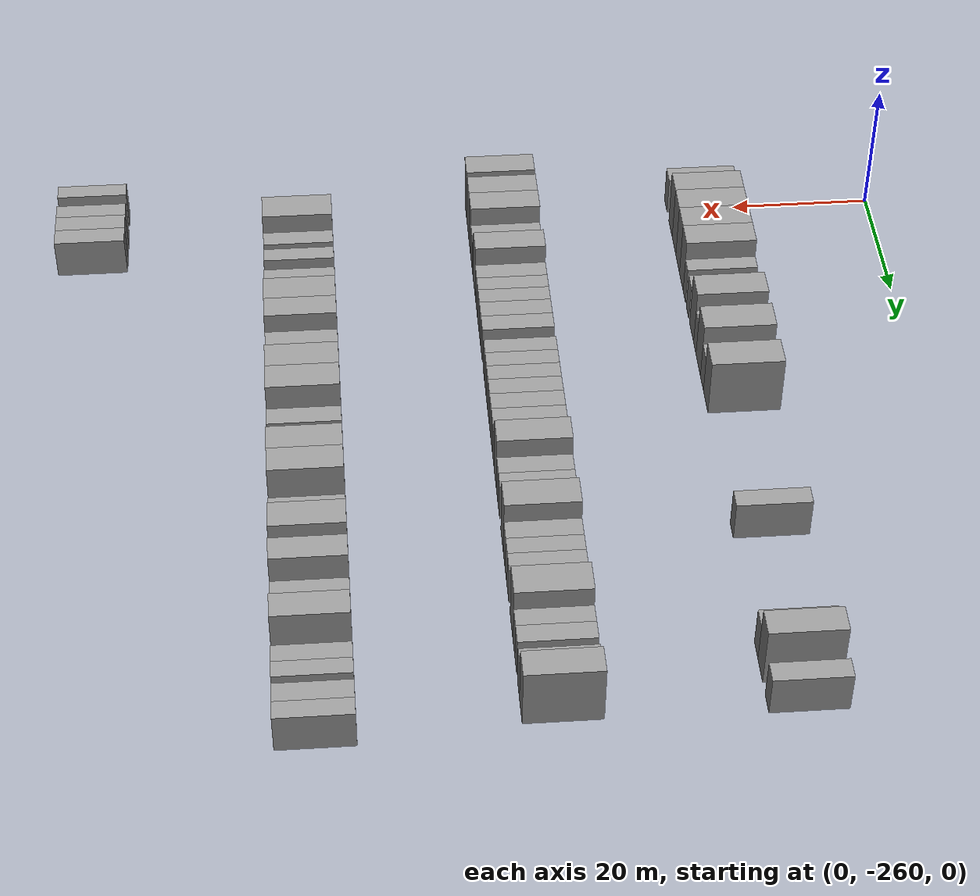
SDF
<sdf version="1.6">
 <world name="default">
  <model name="building_52">
   <static>1</static>
   <pose>25.0000 -261.0676 0 0.000000 0.000000 0.000000</pose>
   <link name="link">
    <pose>0 0 3.00 0 0 0</pose>
    <collision name="collision"><geometry><box><size>10.0000 2.9197 6.0000</size></box></geometry></collision>
    <visual name="visual">
     <cast_shadows>0</cast_shadows>
     <geometry><box><size>10.0000 2.9197 6.0000</size></box></geometry>
     <material>
      <script>
       <uri>model://grey_wall/materials/scripts</uri>
       <uri>model://grey_wall/materials/textures</uri>
       <name>vrc/grey_wall</name>
      </script>
     </material>
    </visual>
   </link>
  </model>
  <model name="building_53">
   <static>1</static>
   <pose>25.0000 -255.6854 0 0.000000 0.000000 0.000000</pose>
   <link name="link">
    <pose>0 0 4.50 0 0 0</pose>
    <collision name="collision"><geometry><box><size>10.0000 3.8448 9.0000</size></box></geometry></collision>
    <visual name="visual">
     <cast_shadows>0</cast_shadows>
     <geometry><box><size>10.0000 3.8448 9.0000</size></box></geometry>
     <material>
      <script>
       <uri>model://grey_wall/materials/scripts</uri>
       <uri>model://grey_wall/materials/textures</uri>
       <name>vrc/grey_wall</name>
      </script>
     </material>
    </visual>
   </link>
  </model>
  <model name="building_54">
   <static>1</static>
   <pose>25.0000 -251.7251 0 0.000000 0.000000 0.000000</pose>
   <link name="link">
    <pose>0 0 4.50 0 0 0</pose>
    <collision name="collision"><geometry><box><size>10.0000 4.0758 9.0000</size></box></geometry></collision>
    <visual name="visual">
     <cast_shadows>0</cast_shadows>
     <geometry><box><size>10.0000 4.0758 9.0000</size></box></geometry>
     <material>
      <script>
       <uri>model://grey_wall/materials/scripts</uri>
       <uri>model://grey_wall/materials/textures</uri>
       <name>vrc/grey_wall</name>
      </script>
     </material>
    </visual>
   </link>
  </model>
  <model name="building_55">
   <static>1</static>
   <pose>25.0000 -247.6626 0 0.000000 0.000000 0.000000</pose>
   <link name="link">
    <pose>0 0 4.50 0 0 0</pose>
    <collision name="collision"><geometry><box><size>10.0000 4.0492 9.0000</size></box></geometry></collision>
    <visual name="visual">
     <cast_shadows>0</cast_shadows>
     <geometry><box><size>10.0000 4.0492 9.0000</size></box></geometry>
     <material>
      <script>
       <uri>model://grey_wall/materials/scripts</uri>
       <uri>model://grey_wall/materials/textures</uri>
       <name>vrc/grey_wall</name>
      </script>
     </material>
    </visual>
   </link>
  </model>
  <model name="building_56">
   <static>1</static>
   <pose>25.0000 -243.6527 0 0.000000 0.000000 0.000000</pose>
   <link name="link">
    <pose>0 0 4.50 0 0 0</pose>
    <collision name="collision"><geometry><box><size>10.0000 3.9707 9.0000</size></box></geometry></collision>
    <visual name="visual">
     <cast_shadows>0</cast_shadows>
     <geometry><box><size>10.0000 3.9707 9.0000</size></box></geometry>
     <material>
      <script>
       <uri>model://grey_wall/materials/scripts</uri>
       <uri>model://grey_wall/materials/textures</uri>
       <name>vrc/grey_wall</name>
      </script>
     </material>
    </visual>
   </link>
  </model>
  <model name="building_57">
   <static>1</static>
   <pose>25.0000 -240.4575 0 0.000000 0.000000 0.000000</pose>
   <link name="link">
    <pose>0 0 3.00 0 0 0</pose>
    <collision name="collision"><geometry><box><size>10.0000 2.4198 6.0000</size></box></geometry></collision>
    <visual name="visual">
     <cast_shadows>0</cast_shadows>
     <geometry><box><size>10.0000 2.4198 6.0000</size></box></geometry>
     <material>
      <script>
       <uri>model://grey_wall/materials/scripts</uri>
       <uri>model://grey_wall/materials/textures</uri>
       <name>vrc/grey_wall</name>
      </script>
     </material>
    </visual>
   </link>
  </model>
  <model name="building_58">
   <static>1</static>
   <pose>25.0000 -237.0049 0 0.000000 0.000000 0.000000</pose>
   <link name="link">
    <pose>0 0 3.00 0 0 0</pose>
    <collision name="collision"><geometry><box><size>10.0000 2.4852 6.0000</size></box></geometry></collision>
    <visual name="visual">
     <cast_shadows>0</cast_shadows>
     <geometry><box><size>10.0000 2.4852 6.0000</size></box></geometry>
     <material>
      <script>
       <uri>model://grey_wall/materials/scripts</uri>
       <uri>model://grey_wall/materials/textures</uri>
       <name>vrc/grey_wall</name>
      </script>
     </material>
    </visual>
   </link>
  </model>
  <model name="building_59">
   <static>1</static>
   <pose>25.0000 -232.6993 0 0.000000 0.000000 0.000000</pose>
   <link name="link">
    <pose>0 0 4.50 0 0 0</pose>
    <collision name="collision"><geometry><box><size>10.0000 4.1260 9.0000</size></box></geometry></collision>
    <visual name="visual">
     <cast_shadows>0</cast_shadows>
     <geometry><box><size>10.0000 4.1260 9.0000</size></box></geometry>
     <material>
      <script>
       <uri>model://grey_wall/materials/scripts</uri>
       <uri>model://grey_wall/materials/textures</uri>
       <name>vrc/grey_wall</name>
      </script>
     </material>
    </visual>
   </link>
  </model>
  <model name="building_60">
   <static>1</static>
   <pose>25.0000 -229.4188 0 0.000000 0.000000 0.000000</pose>
   <link name="link">
    <pose>0 0 3.00 0 0 0</pose>
    <collision name="collision"><geometry><box><size>10.0000 2.4350 6.0000</size></box></geometry></collision>
    <visual name="visual">
     <cast_shadows>0</cast_shadows>
     <geometry><box><size>10.0000 2.4350 6.0000</size></box></geometry>
     <material>
      <script>
       <uri>model://grey_wall/materials/scripts</uri>
       <uri>model://grey_wall/materials/textures</uri>
       <name>vrc/grey_wall</name>
      </script>
     </material>
    </visual>
   </link>
  </model>
  <model name="building_61">
   <static>1</static>
   <pose>25.0000 -225.9693 0 0.000000 0.000000 0.000000</pose>
   <link name="link">
    <pose>0 0 4.50 0 0 0</pose>
    <collision name="collision"><geometry><box><size>10.0000 4.4639 9.0000</size></box></geometry></collision>
    <visual name="visual">
     <cast_shadows>0</cast_shadows>
     <geometry><box><size>10.0000 4.4639 9.0000</size></box></geometry>
     <material>
      <script>
       <uri>model://grey_wall/materials/scripts</uri>
       <uri>model://grey_wall/materials/textures</uri>
       <name>vrc/grey_wall</name>
      </script>
     </material>
    </visual>
   </link>
  </model>
  <model name="building_62">
   <static>1</static>
   <pose>25.0000 -222.2496 0 0.000000 0.000000 0.000000</pose>
   <link name="link">
    <pose>0 0 3.00 0 0 0</pose>
    <collision name="collision"><geometry><box><size>10.0000 2.9757 6.0000</size></box></geometry></collision>
    <visual name="visual">
     <cast_shadows>0</cast_shadows>
     <geometry><box><size>10.0000 2.9757 6.0000</size></box></geometry>
     <material>
      <script>
       <uri>model://grey_wall/materials/scripts</uri>
       <uri>model://grey_wall/materials/textures</uri>
       <name>vrc/grey_wall</name>
      </script>
     </material>
    </visual>
   </link>
  </model>
  <model name="building_63">
   <static>1</static>
   <pose>25.0000 -218.5506 0 0.000000 0.000000 0.000000</pose>
   <link name="link">
    <pose>0 0 4.50 0 0 0</pose>
    <collision name="collision"><geometry><box><size>10.0000 4.4222 9.0000</size></box></geometry></collision>
    <visual name="visual">
     <cast_shadows>0</cast_shadows>
     <geometry><box><size>10.0000 4.4222 9.0000</size></box></geometry>
     <material>
      <script>
       <uri>model://grey_wall/materials/scripts</uri>
       <uri>model://grey_wall/materials/textures</uri>
       <name>vrc/grey_wall</name>
      </script>
     </material>
    </visual>
   </link>
  </model>
  <model name="building_64">
   <static>1</static>
   <pose>25.0000 -194.2822 0 0.000000 0.000000 0.000000</pose>
   <link name="link">
    <pose>0 0 3.00 0 0 0</pose>
    <collision name="collision"><geometry><box><size>10.0000 2.7049 6.0000</size></box></geometry></collision>
    <visual name="visual">
     <cast_shadows>0</cast_shadows>
     <geometry><box><size>10.0000 2.7049 6.0000</size></box></geometry>
     <material>
      <script>
       <uri>model://grey_wall/materials/scripts</uri>
       <uri>model://grey_wall/materials/textures</uri>
       <name>vrc/grey_wall</name>
      </script>
     </material>
    </visual>
   </link>
  </model>
  <model name="building_65">
   <static>1</static>
   <pose>25.0000 -173.8294 0 0.000000 0.000000 0.000000</pose>
   <link name="link">
    <pose>0 0 3.00 0 0 0</pose>
    <collision name="collision"><geometry><box><size>10.0000 2.7336 6.0000</size></box></geometry></collision>
    <visual name="visual">
     <cast_shadows>0</cast_shadows>
     <geometry><box><size>10.0000 2.7336 6.0000</size></box></geometry>
     <material>
      <script>
       <uri>model://grey_wall/materials/scripts</uri>
       <uri>model://grey_wall/materials/textures</uri>
       <name>vrc/grey_wall</name>
      </script>
     </material>
    </visual>
   </link>
  </model>
  <model name="building_66">
   <static>1</static>
   <pose>25.0000 -170.5911 0 0.000000 0.000000 0.000000</pose>
   <link name="link">
    <pose>0 0 4.50 0 0 0</pose>
    <collision name="collision"><geometry><box><size>10.0000 3.7430 9.0000</size></box></geometry></collision>
    <visual name="visual">
     <cast_shadows>0</cast_shadows>
     <geometry><box><size>10.0000 3.7430 9.0000</size></box></geometry>
     <material>
      <script>
       <uri>model://grey_wall/materials/scripts</uri>
       <uri>model://grey_wall/materials/textures</uri>
       <name>vrc/grey_wall</name>
      </script>
     </material>
    </visual>
   </link>
  </model>
  <model name="building_67">
   <static>1</static>
   <pose>25.0000 -165.2950 0 0.000000 0.000000 0.000000</pose>
   <link name="link">
    <pose>0 0 3.00 0 0 0</pose>
    <collision name="collision"><geometry><box><size>10.0000 2.8493 6.0000</size></box></geometry></collision>
    <visual name="visual">
     <cast_shadows>0</cast_shadows>
     <geometry><box><size>10.0000 2.8493 6.0000</size></box></geometry>
     <material>
      <script>
       <uri>model://grey_wall/materials/scripts</uri>
       <uri>model://grey_wall/materials/textures</uri>
       <name>vrc/grey_wall</name>
      </script>
     </material>
    </visual>
   </link>
  </model>
  <model name="building_267">
   <static>1</static>
   <pose>55.0000 -261.7389 0 0.000000 0.000000 0.000000</pose>
   <link name="link">
    <pose>0 0 4.50 0 0 0</pose>
    <collision name="collision"><geometry><box><size>10.0000 3.7535 9.0000</size></box></geometry></collision>
    <visual name="visual">
     <cast_shadows>0</cast_shadows>
     <geometry><box><size>10.0000 3.7535 9.0000</size></box></geometry>
     <material>
      <script>
       <uri>model://grey_wall/materials/scripts</uri>
       <uri>model://grey_wall/materials/textures</uri>
       <name>vrc/grey_wall</name>
      </script>
     </material>
    </visual>
   </link>
  </model>
  <model name="building_268">
   <static>1</static>
   <pose>55.0000 -257.0282 0 0.000000 0.000000 0.000000</pose>
   <link name="link">
    <pose>0 0 4.50 0 0 0</pose>
    <collision name="collision"><geometry><box><size>10.0000 3.6679 9.0000</size></box></geometry></collision>
    <visual name="visual">
     <cast_shadows>0</cast_shadows>
     <geometry><box><size>10.0000 3.6679 9.0000</size></box></geometry>
     <material>
      <script>
       <uri>model://grey_wall/materials/scripts</uri>
       <uri>model://grey_wall/materials/textures</uri>
       <name>vrc/grey_wall</name>
      </script>
     </material>
    </visual>
   </link>
  </model>
  <model name="building_269">
   <static>1</static>
   <pose>55.0000 -253.3184 0 0.000000 0.000000 0.000000</pose>
   <link name="link">
    <pose>0 0 4.50 0 0 0</pose>
    <collision name="collision"><geometry><box><size>10.0000 3.7517 9.0000</size></box></geometry></collision>
    <visual name="visual">
     <cast_shadows>0</cast_shadows>
     <geometry><box><size>10.0000 3.7517 9.0000</size></box></geometry>
     <material>
      <script>
       <uri>model://grey_wall/materials/scripts</uri>
       <uri>model://grey_wall/materials/textures</uri>
       <name>vrc/grey_wall</name>
      </script>
     </material>
    </visual>
   </link>
  </model>
  <model name="building_270">
   <static>1</static>
   <pose>55.0000 -250.1114 0 0.000000 0.000000 0.000000</pose>
   <link name="link">
    <pose>0 0 3.00 0 0 0</pose>
    <collision name="collision"><geometry><box><size>10.0000 2.6622 6.0000</size></box></geometry></collision>
    <visual name="visual">
     <cast_shadows>0</cast_shadows>
     <geometry><box><size>10.0000 2.6622 6.0000</size></box></geometry>
     <material>
      <script>
       <uri>model://grey_wall/materials/scripts</uri>
       <uri>model://grey_wall/materials/textures</uri>
       <name>vrc/grey_wall</name>
      </script>
     </material>
    </visual>
   </link>
  </model>
  <model name="building_271">
   <static>1</static>
   <pose>55.0000 -247.4795 0 0.000000 0.000000 0.000000</pose>
   <link name="link">
    <pose>0 0 3.00 0 0 0</pose>
    <collision name="collision"><geometry><box><size>10.0000 2.6016 6.0000</size></box></geometry></collision>
    <visual name="visual">
     <cast_shadows>0</cast_shadows>
     <geometry><box><size>10.0000 2.6016 6.0000</size></box></geometry>
     <material>
      <script>
       <uri>model://grey_wall/materials/scripts</uri>
       <uri>model://grey_wall/materials/textures</uri>
       <name>vrc/grey_wall</name>
      </script>
     </material>
    </visual>
   </link>
  </model>
  <model name="building_272">
   <static>1</static>
   <pose>55.0000 -244.3650 0 0.000000 0.000000 0.000000</pose>
   <link name="link">
    <pose>0 0 4.50 0 0 0</pose>
    <collision name="collision"><geometry><box><size>10.0000 3.6274 9.0000</size></box></geometry></collision>
    <visual name="visual">
     <cast_shadows>0</cast_shadows>
     <geometry><box><size>10.0000 3.6274 9.0000</size></box></geometry>
     <material>
      <script>
       <uri>model://grey_wall/materials/scripts</uri>
       <uri>model://grey_wall/materials/textures</uri>
       <name>vrc/grey_wall</name>
      </script>
     </material>
    </visual>
   </link>
  </model>
  <model name="building_273">
   <static>1</static>
   <pose>55.0000 -241.1746 0 0.000000 0.000000 0.000000</pose>
   <link name="link">
    <pose>0 0 3.00 0 0 0</pose>
    <collision name="collision"><geometry><box><size>10.0000 2.7535 6.0000</size></box></geometry></collision>
    <visual name="visual">
     <cast_shadows>0</cast_shadows>
     <geometry><box><size>10.0000 2.7535 6.0000</size></box></geometry>
     <material>
      <script>
       <uri>model://grey_wall/materials/scripts</uri>
       <uri>model://grey_wall/materials/textures</uri>
       <name>vrc/grey_wall</name>
      </script>
     </material>
    </visual>
   </link>
  </model>
  <model name="building_274">
   <static>1</static>
   <pose>55.0000 -238.5327 0 0.000000 0.000000 0.000000</pose>
   <link name="link">
    <pose>0 0 3.00 0 0 0</pose>
    <collision name="collision"><geometry><box><size>10.0000 2.5304 6.0000</size></box></geometry></collision>
    <visual name="visual">
     <cast_shadows>0</cast_shadows>
     <geometry><box><size>10.0000 2.5304 6.0000</size></box></geometry>
     <material>
      <script>
       <uri>model://grey_wall/materials/scripts</uri>
       <uri>model://grey_wall/materials/textures</uri>
       <name>vrc/grey_wall</name>
      </script>
     </material>
    </visual>
   </link>
  </model>
  <model name="building_275">
   <static>1</static>
   <pose>55.0000 -235.9418 0 0.000000 0.000000 0.000000</pose>
   <link name="link">
    <pose>0 0 3.00 0 0 0</pose>
    <collision name="collision"><geometry><box><size>10.0000 2.6516 6.0000</size></box></geometry></collision>
    <visual name="visual">
     <cast_shadows>0</cast_shadows>
     <geometry><box><size>10.0000 2.6516 6.0000</size></box></geometry>
     <material>
      <script>
       <uri>model://grey_wall/materials/scripts</uri>
       <uri>model://grey_wall/materials/textures</uri>
       <name>vrc/grey_wall</name>
      </script>
     </material>
    </visual>
   </link>
  </model>
  <model name="building_276">
   <static>1</static>
   <pose>55.0000 -233.1583 0 0.000000 0.000000 0.000000</pose>
   <link name="link">
    <pose>0 0 3.00 0 0 0</pose>
    <collision name="collision"><geometry><box><size>10.0000 2.9152 6.0000</size></box></geometry></collision>
    <visual name="visual">
     <cast_shadows>0</cast_shadows>
     <geometry><box><size>10.0000 2.9152 6.0000</size></box></geometry>
     <material>
      <script>
       <uri>model://grey_wall/materials/scripts</uri>
       <uri>model://grey_wall/materials/textures</uri>
       <name>vrc/grey_wall</name>
      </script>
     </material>
    </visual>
   </link>
  </model>
  <model name="building_277">
   <static>1</static>
   <pose>55.0000 -230.2488 0 0.000000 0.000000 0.000000</pose>
   <link name="link">
    <pose>0 0 3.00 0 0 0</pose>
    <collision name="collision"><geometry><box><size>10.0000 2.9038 6.0000</size></box></geometry></collision>
    <visual name="visual">
     <cast_shadows>0</cast_shadows>
     <geometry><box><size>10.0000 2.9038 6.0000</size></box></geometry>
     <material>
      <script>
       <uri>model://grey_wall/materials/scripts</uri>
       <uri>model://grey_wall/materials/textures</uri>
       <name>vrc/grey_wall</name>
      </script>
     </material>
    </visual>
   </link>
  </model>
  <model name="building_278">
   <static>1</static>
   <pose>55.0000 -225.4875 0 0.000000 0.000000 0.000000</pose>
   <link name="link">
    <pose>0 0 3.00 0 0 0</pose>
    <collision name="collision"><geometry><box><size>10.0000 2.6188 6.0000</size></box></geometry></collision>
    <visual name="visual">
     <cast_shadows>0</cast_shadows>
     <geometry><box><size>10.0000 2.6188 6.0000</size></box></geometry>
     <material>
      <script>
       <uri>model://grey_wall/materials/scripts</uri>
       <uri>model://grey_wall/materials/textures</uri>
       <name>vrc/grey_wall</name>
      </script>
     </material>
    </visual>
   </link>
  </model>
  <model name="building_279">
   <static>1</static>
   <pose>55.0000 -222.8541 0 0.000000 0.000000 0.000000</pose>
   <link name="link">
    <pose>0 0 3.00 0 0 0</pose>
    <collision name="collision"><geometry><box><size>10.0000 2.6481 6.0000</size></box></geometry></collision>
    <visual name="visual">
     <cast_shadows>0</cast_shadows>
     <geometry><box><size>10.0000 2.6481 6.0000</size></box></geometry>
     <material>
      <script>
       <uri>model://grey_wall/materials/scripts</uri>
       <uri>model://grey_wall/materials/textures</uri>
       <name>vrc/grey_wall</name>
      </script>
     </material>
    </visual>
   </link>
  </model>
  <model name="building_280">
   <static>1</static>
   <pose>55.0000 -220.1890 0 0.000000 0.000000 0.000000</pose>
   <link name="link">
    <pose>0 0 3.00 0 0 0</pose>
    <collision name="collision"><geometry><box><size>10.0000 2.6820 6.0000</size></box></geometry></collision>
    <visual name="visual">
     <cast_shadows>0</cast_shadows>
     <geometry><box><size>10.0000 2.6820 6.0000</size></box></geometry>
     <material>
      <script>
       <uri>model://grey_wall/materials/scripts</uri>
       <uri>model://grey_wall/materials/textures</uri>
       <name>vrc/grey_wall</name>
      </script>
     </material>
    </visual>
   </link>
  </model>
  <model name="building_281">
   <static>1</static>
   <pose>55.0000 -217.4396 0 0.000000 0.000000 0.000000</pose>
   <link name="link">
    <pose>0 0 3.00 0 0 0</pose>
    <collision name="collision"><geometry><box><size>10.0000 2.8168 6.0000</size></box></geometry></collision>
    <visual name="visual">
     <cast_shadows>0</cast_shadows>
     <geometry><box><size>10.0000 2.8168 6.0000</size></box></geometry>
     <material>
      <script>
       <uri>model://grey_wall/materials/scripts</uri>
       <uri>model://grey_wall/materials/textures</uri>
       <name>vrc/grey_wall</name>
      </script>
     </material>
    </visual>
   </link>
  </model>
  <model name="building_282">
   <static>1</static>
   <pose>55.0000 -214.5979 0 0.000000 0.000000 0.000000</pose>
   <link name="link">
    <pose>0 0 3.00 0 0 0</pose>
    <collision name="collision"><geometry><box><size>10.0000 2.8666 6.0000</size></box></geometry></collision>
    <visual name="visual">
     <cast_shadows>0</cast_shadows>
     <geometry><box><size>10.0000 2.8666 6.0000</size></box></geometry>
     <material>
      <script>
       <uri>model://grey_wall/materials/scripts</uri>
       <uri>model://grey_wall/materials/textures</uri>
       <name>vrc/grey_wall</name>
      </script>
     </material>
    </visual>
   </link>
  </model>
  <model name="building_283">
   <static>1</static>
   <pose>55.0000 -211.6831 0 0.000000 0.000000 0.000000</pose>
   <link name="link">
    <pose>0 0 3.00 0 0 0</pose>
    <collision name="collision"><geometry><box><size>10.0000 2.9630 6.0000</size></box></geometry></collision>
    <visual name="visual">
     <cast_shadows>0</cast_shadows>
     <geometry><box><size>10.0000 2.9630 6.0000</size></box></geometry>
     <material>
      <script>
       <uri>model://grey_wall/materials/scripts</uri>
       <uri>model://grey_wall/materials/textures</uri>
       <name>vrc/grey_wall</name>
      </script>
     </material>
    </visual>
   </link>
  </model>
  <model name="building_284">
   <static>1</static>
   <pose>55.0000 -208.9983 0 0.000000 0.000000 0.000000</pose>
   <link name="link">
    <pose>0 0 3.00 0 0 0</pose>
    <collision name="collision"><geometry><box><size>10.0000 2.4067 6.0000</size></box></geometry></collision>
    <visual name="visual">
     <cast_shadows>0</cast_shadows>
     <geometry><box><size>10.0000 2.4067 6.0000</size></box></geometry>
     <material>
      <script>
       <uri>model://grey_wall/materials/scripts</uri>
       <uri>model://grey_wall/materials/textures</uri>
       <name>vrc/grey_wall</name>
      </script>
     </material>
    </visual>
   </link>
  </model>
  <model name="building_285">
   <static>1</static>
   <pose>55.0000 -205.8319 0 0.000000 0.000000 0.000000</pose>
   <link name="link">
    <pose>0 0 4.50 0 0 0</pose>
    <collision name="collision"><geometry><box><size>10.0000 3.9261 9.0000</size></box></geometry></collision>
    <visual name="visual">
     <cast_shadows>0</cast_shadows>
     <geometry><box><size>10.0000 3.9261 9.0000</size></box></geometry>
     <material>
      <script>
       <uri>model://grey_wall/materials/scripts</uri>
       <uri>model://grey_wall/materials/textures</uri>
       <name>vrc/grey_wall</name>
      </script>
     </material>
    </visual>
   </link>
  </model>
  <model name="building_286">
   <static>1</static>
   <pose>55.0000 -202.4458 0 0.000000 0.000000 0.000000</pose>
   <link name="link">
    <pose>0 0 3.00 0 0 0</pose>
    <collision name="collision"><geometry><box><size>10.0000 2.8460 6.0000</size></box></geometry></collision>
    <visual name="visual">
     <cast_shadows>0</cast_shadows>
     <geometry><box><size>10.0000 2.8460 6.0000</size></box></geometry>
     <material>
      <script>
       <uri>model://grey_wall/materials/scripts</uri>
       <uri>model://grey_wall/materials/textures</uri>
       <name>vrc/grey_wall</name>
      </script>
     </material>
    </visual>
   </link>
  </model>
  <model name="building_287">
   <static>1</static>
   <pose>55.0000 -199.7913 0 0.000000 0.000000 0.000000</pose>
   <link name="link">
    <pose>0 0 3.00 0 0 0</pose>
    <collision name="collision"><geometry><box><size>10.0000 2.4629 6.0000</size></box></geometry></collision>
    <visual name="visual">
     <cast_shadows>0</cast_shadows>
     <geometry><box><size>10.0000 2.4629 6.0000</size></box></geometry>
     <material>
      <script>
       <uri>model://grey_wall/materials/scripts</uri>
       <uri>model://grey_wall/materials/textures</uri>
       <name>vrc/grey_wall</name>
      </script>
     </material>
    </visual>
   </link>
  </model>
  <model name="building_288">
   <static>1</static>
   <pose>55.0000 -194.4192 0 0.000000 0.000000 0.000000</pose>
   <link name="link">
    <pose>0 0 4.50 0 0 0</pose>
    <collision name="collision"><geometry><box><size>10.0000 4.2814 9.0000</size></box></geometry></collision>
    <visual name="visual">
     <cast_shadows>0</cast_shadows>
     <geometry><box><size>10.0000 4.2814 9.0000</size></box></geometry>
     <material>
      <script>
       <uri>model://grey_wall/materials/scripts</uri>
       <uri>model://grey_wall/materials/textures</uri>
       <name>vrc/grey_wall</name>
      </script>
     </material>
    </visual>
   </link>
  </model>
  <model name="building_289">
   <static>1</static>
   <pose>55.0000 -190.8534 0 0.000000 0.000000 0.000000</pose>
   <link name="link">
    <pose>0 0 3.00 0 0 0</pose>
    <collision name="collision"><geometry><box><size>10.0000 2.8503 6.0000</size></box></geometry></collision>
    <visual name="visual">
     <cast_shadows>0</cast_shadows>
     <geometry><box><size>10.0000 2.8503 6.0000</size></box></geometry>
     <material>
      <script>
       <uri>model://grey_wall/materials/scripts</uri>
       <uri>model://grey_wall/materials/textures</uri>
       <name>vrc/grey_wall</name>
      </script>
     </material>
    </visual>
   </link>
  </model>
  <model name="building_290">
   <static>1</static>
   <pose>55.0000 -188.1364 0 0.000000 0.000000 0.000000</pose>
   <link name="link">
    <pose>0 0 3.00 0 0 0</pose>
    <collision name="collision"><geometry><box><size>10.0000 2.5836 6.0000</size></box></geometry></collision>
    <visual name="visual">
     <cast_shadows>0</cast_shadows>
     <geometry><box><size>10.0000 2.5836 6.0000</size></box></geometry>
     <material>
      <script>
       <uri>model://grey_wall/materials/scripts</uri>
       <uri>model://grey_wall/materials/textures</uri>
       <name>vrc/grey_wall</name>
      </script>
     </material>
    </visual>
   </link>
  </model>
  <model name="building_291">
   <static>1</static>
   <pose>55.0000 -185.3908 0 0.000000 0.000000 0.000000</pose>
   <link name="link">
    <pose>0 0 3.00 0 0 0</pose>
    <collision name="collision"><geometry><box><size>10.0000 2.9077 6.0000</size></box></geometry></collision>
    <visual name="visual">
     <cast_shadows>0</cast_shadows>
     <geometry><box><size>10.0000 2.9077 6.0000</size></box></geometry>
     <material>
      <script>
       <uri>model://grey_wall/materials/scripts</uri>
       <uri>model://grey_wall/materials/textures</uri>
       <name>vrc/grey_wall</name>
      </script>
     </material>
    </visual>
   </link>
  </model>
  <model name="building_292">
   <static>1</static>
   <pose>55.0000 -179.6924 0 0.000000 0.000000 0.000000</pose>
   <link name="link">
    <pose>0 0 4.50 0 0 0</pose>
    <collision name="collision"><geometry><box><size>10.0000 4.4892 9.0000</size></box></geometry></collision>
    <visual name="visual">
     <cast_shadows>0</cast_shadows>
     <geometry><box><size>10.0000 4.4892 9.0000</size></box></geometry>
     <material>
      <script>
       <uri>model://grey_wall/materials/scripts</uri>
       <uri>model://grey_wall/materials/textures</uri>
       <name>vrc/grey_wall</name>
      </script>
     </material>
    </visual>
   </link>
  </model>
  <model name="building_293">
   <static>1</static>
   <pose>55.0000 -176.1431 0 0.000000 0.000000 0.000000</pose>
   <link name="link">
    <pose>0 0 3.00 0 0 0</pose>
    <collision name="collision"><geometry><box><size>10.0000 2.6094 6.0000</size></box></geometry></collision>
    <visual name="visual">
     <cast_shadows>0</cast_shadows>
     <geometry><box><size>10.0000 2.6094 6.0000</size></box></geometry>
     <material>
      <script>
       <uri>model://grey_wall/materials/scripts</uri>
       <uri>model://grey_wall/materials/textures</uri>
       <name>vrc/grey_wall</name>
      </script>
     </material>
    </visual>
   </link>
  </model>
  <model name="building_294">
   <static>1</static>
   <pose>55.0000 -173.4839 0 0.000000 0.000000 0.000000</pose>
   <link name="link">
    <pose>0 0 3.00 0 0 0</pose>
    <collision name="collision"><geometry><box><size>10.0000 2.7089 6.0000</size></box></geometry></collision>
    <visual name="visual">
     <cast_shadows>0</cast_shadows>
     <geometry><box><size>10.0000 2.7089 6.0000</size></box></geometry>
     <material>
      <script>
       <uri>model://grey_wall/materials/scripts</uri>
       <uri>model://grey_wall/materials/textures</uri>
       <name>vrc/grey_wall</name>
      </script>
     </material>
    </visual>
   </link>
  </model>
  <model name="building_295">
   <static>1</static>
   <pose>55.0000 -169.6611 0 0.000000 0.000000 0.000000</pose>
   <link name="link">
    <pose>0 0 3.00 0 0 0</pose>
    <collision name="collision"><geometry><box><size>10.0000 2.9366 6.0000</size></box></geometry></collision>
    <visual name="visual">
     <cast_shadows>0</cast_shadows>
     <geometry><box><size>10.0000 2.9366 6.0000</size></box></geometry>
     <material>
      <script>
       <uri>model://grey_wall/materials/scripts</uri>
       <uri>model://grey_wall/materials/textures</uri>
       <name>vrc/grey_wall</name>
      </script>
     </material>
    </visual>
   </link>
  </model>
  <model name="building_296">
   <static>1</static>
   <pose>55.0000 -166.2671 0 0.000000 0.000000 0.000000</pose>
   <link name="link">
    <pose>0 0 4.50 0 0 0</pose>
    <collision name="collision"><geometry><box><size>10.0000 3.8515 9.0000</size></box></geometry></collision>
    <visual name="visual">
     <cast_shadows>0</cast_shadows>
     <geometry><box><size>10.0000 3.8515 9.0000</size></box></geometry>
     <material>
      <script>
       <uri>model://grey_wall/materials/scripts</uri>
       <uri>model://grey_wall/materials/textures</uri>
       <name>vrc/grey_wall</name>
      </script>
     </material>
    </visual>
   </link>
  </model>
  <model name="building_505">
   <static>1</static>
   <pose>85.0000 -258.5262 0 0.000000 0.000000 0.000000</pose>
   <link name="link">
    <pose>0 0 3.00 0 0 0</pose>
    <collision name="collision"><geometry><box><size>10.0000 2.4002 6.0000</size></box></geometry></collision>
    <visual name="visual">
     <cast_shadows>0</cast_shadows>
     <geometry><box><size>10.0000 2.4002 6.0000</size></box></geometry>
     <material>
      <script>
       <uri>model://grey_wall/materials/scripts</uri>
       <uri>model://grey_wall/materials/textures</uri>
       <name>vrc/grey_wall</name>
      </script>
     </material>
    </visual>
   </link>
  </model>
  <model name="building_506">
   <static>1</static>
   <pose>85.0000 -254.0789 0 0.000000 0.000000 0.000000</pose>
   <link name="link">
    <pose>0 0 4.50 0 0 0</pose>
    <collision name="collision"><geometry><box><size>10.0000 4.4945 9.0000</size></box></geometry></collision>
    <visual name="visual">
     <cast_shadows>0</cast_shadows>
     <geometry><box><size>10.0000 4.4945 9.0000</size></box></geometry>
     <material>
      <script>
       <uri>model://grey_wall/materials/scripts</uri>
       <uri>model://grey_wall/materials/textures</uri>
       <name>vrc/grey_wall</name>
      </script>
     </material>
    </visual>
   </link>
  </model>
  <model name="building_507">
   <static>1</static>
   <pose>85.0000 -250.4963 0 0.000000 0.000000 0.000000</pose>
   <link name="link">
    <pose>0 0 3.00 0 0 0</pose>
    <collision name="collision"><geometry><box><size>10.0000 2.6707 6.0000</size></box></geometry></collision>
    <visual name="visual">
     <cast_shadows>0</cast_shadows>
     <geometry><box><size>10.0000 2.6707 6.0000</size></box></geometry>
     <material>
      <script>
       <uri>model://grey_wall/materials/scripts</uri>
       <uri>model://grey_wall/materials/textures</uri>
       <name>vrc/grey_wall</name>
      </script>
     </material>
    </visual>
   </link>
  </model>
  <model name="building_508">
   <static>1</static>
   <pose>85.0000 -246.9183 0 0.000000 0.000000 0.000000</pose>
   <link name="link">
    <pose>0 0 3.00 0 0 0</pose>
    <collision name="collision"><geometry><box><size>10.0000 2.4853 6.0000</size></box></geometry></collision>
    <visual name="visual">
     <cast_shadows>0</cast_shadows>
     <geometry><box><size>10.0000 2.4853 6.0000</size></box></geometry>
     <material>
      <script>
       <uri>model://grey_wall/materials/scripts</uri>
       <uri>model://grey_wall/materials/textures</uri>
       <name>vrc/grey_wall</name>
      </script>
     </material>
    </visual>
   </link>
  </model>
  <model name="building_509">
   <static>1</static>
   <pose>85.0000 -242.3209 0 0.000000 0.000000 0.000000</pose>
   <link name="link">
    <pose>0 0 3.00 0 0 0</pose>
    <collision name="collision"><geometry><box><size>10.0000 2.7094 6.0000</size></box></geometry></collision>
    <visual name="visual">
     <cast_shadows>0</cast_shadows>
     <geometry><box><size>10.0000 2.7094 6.0000</size></box></geometry>
     <material>
      <script>
       <uri>model://grey_wall/materials/scripts</uri>
       <uri>model://grey_wall/materials/textures</uri>
       <name>vrc/grey_wall</name>
      </script>
     </material>
    </visual>
   </link>
  </model>
  <model name="building_510">
   <static>1</static>
   <pose>85.0000 -239.6650 0 0.000000 0.000000 0.000000</pose>
   <link name="link">
    <pose>0 0 3.00 0 0 0</pose>
    <collision name="collision"><geometry><box><size>10.0000 2.6024 6.0000</size></box></geometry></collision>
    <visual name="visual">
     <cast_shadows>0</cast_shadows>
     <geometry><box><size>10.0000 2.6024 6.0000</size></box></geometry>
     <material>
      <script>
       <uri>model://grey_wall/materials/scripts</uri>
       <uri>model://grey_wall/materials/textures</uri>
       <name>vrc/grey_wall</name>
      </script>
     </material>
    </visual>
   </link>
  </model>
  <model name="building_511">
   <static>1</static>
   <pose>85.0000 -236.2658 0 0.000000 0.000000 0.000000</pose>
   <link name="link">
    <pose>0 0 4.50 0 0 0</pose>
    <collision name="collision"><geometry><box><size>10.0000 4.1960 9.0000</size></box></geometry></collision>
    <visual name="visual">
     <cast_shadows>0</cast_shadows>
     <geometry><box><size>10.0000 4.1960 9.0000</size></box></geometry>
     <material>
      <script>
       <uri>model://grey_wall/materials/scripts</uri>
       <uri>model://grey_wall/materials/textures</uri>
       <name>vrc/grey_wall</name>
      </script>
     </material>
    </visual>
   </link>
  </model>
  <model name="building_512">
   <static>1</static>
   <pose>85.0000 -232.3328 0 0.000000 0.000000 0.000000</pose>
   <link name="link">
    <pose>0 0 4.50 0 0 0</pose>
    <collision name="collision"><geometry><box><size>10.0000 3.6701 9.0000</size></box></geometry></collision>
    <visual name="visual">
     <cast_shadows>0</cast_shadows>
     <geometry><box><size>10.0000 3.6701 9.0000</size></box></geometry>
     <material>
      <script>
       <uri>model://grey_wall/materials/scripts</uri>
       <uri>model://grey_wall/materials/textures</uri>
       <name>vrc/grey_wall</name>
      </script>
     </material>
    </visual>
   </link>
  </model>
  <model name="building_513">
   <static>1</static>
   <pose>85.0000 -229.0031 0 0.000000 0.000000 0.000000</pose>
   <link name="link">
    <pose>0 0 3.00 0 0 0</pose>
    <collision name="collision"><geometry><box><size>10.0000 2.9893 6.0000</size></box></geometry></collision>
    <visual name="visual">
     <cast_shadows>0</cast_shadows>
     <geometry><box><size>10.0000 2.9893 6.0000</size></box></geometry>
     <material>
      <script>
       <uri>model://grey_wall/materials/scripts</uri>
       <uri>model://grey_wall/materials/textures</uri>
       <name>vrc/grey_wall</name>
      </script>
     </material>
    </visual>
   </link>
  </model>
  <model name="building_514">
   <static>1</static>
   <pose>85.0000 -226.0702 0 0.000000 0.000000 0.000000</pose>
   <link name="link">
    <pose>0 0 3.00 0 0 0</pose>
    <collision name="collision"><geometry><box><size>10.0000 2.8765 6.0000</size></box></geometry></collision>
    <visual name="visual">
     <cast_shadows>0</cast_shadows>
     <geometry><box><size>10.0000 2.8765 6.0000</size></box></geometry>
     <material>
      <script>
       <uri>model://grey_wall/materials/scripts</uri>
       <uri>model://grey_wall/materials/textures</uri>
       <name>vrc/grey_wall</name>
      </script>
     </material>
    </visual>
   </link>
  </model>
  <model name="building_515">
   <static>1</static>
   <pose>85.0000 -222.5490 0 0.000000 0.000000 0.000000</pose>
   <link name="link">
    <pose>0 0 4.50 0 0 0</pose>
    <collision name="collision"><geometry><box><size>10.0000 4.1660 9.0000</size></box></geometry></collision>
    <visual name="visual">
     <cast_shadows>0</cast_shadows>
     <geometry><box><size>10.0000 4.1660 9.0000</size></box></geometry>
     <material>
      <script>
       <uri>model://grey_wall/materials/scripts</uri>
       <uri>model://grey_wall/materials/textures</uri>
       <name>vrc/grey_wall</name>
      </script>
     </material>
    </visual>
   </link>
  </model>
  <model name="building_516">
   <static>1</static>
   <pose>85.0000 -218.3307 0 0.000000 0.000000 0.000000</pose>
   <link name="link">
    <pose>0 0 4.50 0 0 0</pose>
    <collision name="collision"><geometry><box><size>10.0000 4.2704 9.0000</size></box></geometry></collision>
    <visual name="visual">
     <cast_shadows>0</cast_shadows>
     <geometry><box><size>10.0000 4.2704 9.0000</size></box></geometry>
     <material>
      <script>
       <uri>model://grey_wall/materials/scripts</uri>
       <uri>model://grey_wall/materials/textures</uri>
       <name>vrc/grey_wall</name>
      </script>
     </material>
    </visual>
   </link>
  </model>
  <model name="building_517">
   <static>1</static>
   <pose>85.0000 -213.7462 0 0.000000 0.000000 0.000000</pose>
   <link name="link">
    <pose>0 0 3.00 0 0 0</pose>
    <collision name="collision"><geometry><box><size>10.0000 2.8987 6.0000</size></box></geometry></collision>
    <visual name="visual">
     <cast_shadows>0</cast_shadows>
     <geometry><box><size>10.0000 2.8987 6.0000</size></box></geometry>
     <material>
      <script>
       <uri>model://grey_wall/materials/scripts</uri>
       <uri>model://grey_wall/materials/textures</uri>
       <name>vrc/grey_wall</name>
      </script>
     </material>
    </visual>
   </link>
  </model>
  <model name="building_518">
   <static>1</static>
   <pose>85.0000 -210.0279 0 0.000000 0.000000 0.000000</pose>
   <link name="link">
    <pose>0 0 3.00 0 0 0</pose>
    <collision name="collision"><geometry><box><size>10.0000 2.5381 6.0000</size></box></geometry></collision>
    <visual name="visual">
     <cast_shadows>0</cast_shadows>
     <geometry><box><size>10.0000 2.5381 6.0000</size></box></geometry>
     <material>
      <script>
       <uri>model://grey_wall/materials/scripts</uri>
       <uri>model://grey_wall/materials/textures</uri>
       <name>vrc/grey_wall</name>
      </script>
     </material>
    </visual>
   </link>
  </model>
  <model name="building_519">
   <static>1</static>
   <pose>85.0000 -206.7629 0 0.000000 0.000000 0.000000</pose>
   <link name="link">
    <pose>0 0 4.50 0 0 0</pose>
    <collision name="collision"><geometry><box><size>10.0000 3.9919 9.0000</size></box></geometry></collision>
    <visual name="visual">
     <cast_shadows>0</cast_shadows>
     <geometry><box><size>10.0000 3.9919 9.0000</size></box></geometry>
     <material>
      <script>
       <uri>model://grey_wall/materials/scripts</uri>
       <uri>model://grey_wall/materials/textures</uri>
       <name>vrc/grey_wall</name>
      </script>
     </material>
    </visual>
   </link>
  </model>
  <model name="building_520">
   <static>1</static>
   <pose>85.0000 -202.7245 0 0.000000 0.000000 0.000000</pose>
   <link name="link">
    <pose>0 0 4.50 0 0 0</pose>
    <collision name="collision"><geometry><box><size>10.0000 4.0850 9.0000</size></box></geometry></collision>
    <visual name="visual">
     <cast_shadows>0</cast_shadows>
     <geometry><box><size>10.0000 4.0850 9.0000</size></box></geometry>
     <material>
      <script>
       <uri>model://grey_wall/materials/scripts</uri>
       <uri>model://grey_wall/materials/textures</uri>
       <name>vrc/grey_wall</name>
      </script>
     </material>
    </visual>
   </link>
  </model>
  <model name="building_521">
   <static>1</static>
   <pose>85.0000 -197.3211 0 0.000000 0.000000 0.000000</pose>
   <link name="link">
    <pose>0 0 3.00 0 0 0</pose>
    <collision name="collision"><geometry><box><size>10.0000 2.7218 6.0000</size></box></geometry></collision>
    <visual name="visual">
     <cast_shadows>0</cast_shadows>
     <geometry><box><size>10.0000 2.7218 6.0000</size></box></geometry>
     <material>
      <script>
       <uri>model://grey_wall/materials/scripts</uri>
       <uri>model://grey_wall/materials/textures</uri>
       <name>vrc/grey_wall</name>
      </script>
     </material>
    </visual>
   </link>
  </model>
  <model name="building_522">
   <static>1</static>
   <pose>85.0000 -192.8965 0 0.000000 0.000000 0.000000</pose>
   <link name="link">
    <pose>0 0 4.50 0 0 0</pose>
    <collision name="collision"><geometry><box><size>10.0000 4.1274 9.0000</size></box></geometry></collision>
    <visual name="visual">
     <cast_shadows>0</cast_shadows>
     <geometry><box><size>10.0000 4.1274 9.0000</size></box></geometry>
     <material>
      <script>
       <uri>model://grey_wall/materials/scripts</uri>
       <uri>model://grey_wall/materials/textures</uri>
       <name>vrc/grey_wall</name>
      </script>
     </material>
    </visual>
   </link>
  </model>
  <model name="building_523">
   <static>1</static>
   <pose>85.0000 -187.0302 0 0.000000 0.000000 0.000000</pose>
   <link name="link">
    <pose>0 0 4.50 0 0 0</pose>
    <collision name="collision"><geometry><box><size>10.0000 3.6053 9.0000</size></box></geometry></collision>
    <visual name="visual">
     <cast_shadows>0</cast_shadows>
     <geometry><box><size>10.0000 3.6053 9.0000</size></box></geometry>
     <material>
      <script>
       <uri>model://grey_wall/materials/scripts</uri>
       <uri>model://grey_wall/materials/textures</uri>
       <name>vrc/grey_wall</name>
      </script>
     </material>
    </visual>
   </link>
  </model>
  <model name="building_524">
   <static>1</static>
   <pose>85.0000 -182.8734 0 0.000000 0.000000 0.000000</pose>
   <link name="link">
    <pose>0 0 3.00 0 0 0</pose>
    <collision name="collision"><geometry><box><size>10.0000 2.7084 6.0000</size></box></geometry></collision>
    <visual name="visual">
     <cast_shadows>0</cast_shadows>
     <geometry><box><size>10.0000 2.7084 6.0000</size></box></geometry>
     <material>
      <script>
       <uri>model://grey_wall/materials/scripts</uri>
       <uri>model://grey_wall/materials/textures</uri>
       <name>vrc/grey_wall</name>
      </script>
     </material>
    </visual>
   </link>
  </model>
  <model name="building_525">
   <static>1</static>
   <pose>85.0000 -177.6456 0 0.000000 0.000000 0.000000</pose>
   <link name="link">
    <pose>0 0 4.50 0 0 0</pose>
    <collision name="collision"><geometry><box><size>10.0000 3.7472 9.0000</size></box></geometry></collision>
    <visual name="visual">
     <cast_shadows>0</cast_shadows>
     <geometry><box><size>10.0000 3.7472 9.0000</size></box></geometry>
     <material>
      <script>
       <uri>model://grey_wall/materials/scripts</uri>
       <uri>model://grey_wall/materials/textures</uri>
       <name>vrc/grey_wall</name>
      </script>
     </material>
    </visual>
   </link>
  </model>
  <model name="building_526">
   <static>1</static>
   <pose>85.0000 -172.5087 0 0.000000 0.000000 0.000000</pose>
   <link name="link">
    <pose>0 0 3.00 0 0 0</pose>
    <collision name="collision"><geometry><box><size>10.0000 2.5266 6.0000</size></box></geometry></collision>
    <visual name="visual">
     <cast_shadows>0</cast_shadows>
     <geometry><box><size>10.0000 2.5266 6.0000</size></box></geometry>
     <material>
      <script>
       <uri>model://grey_wall/materials/scripts</uri>
       <uri>model://grey_wall/materials/textures</uri>
       <name>vrc/grey_wall</name>
      </script>
     </material>
    </visual>
   </link>
  </model>
  <model name="building_527">
   <static>1</static>
   <pose>85.0000 -170.0316 0 0.000000 0.000000 0.000000</pose>
   <link name="link">
    <pose>0 0 3.00 0 0 0</pose>
    <collision name="collision"><geometry><box><size>10.0000 2.4276 6.0000</size></box></geometry></collision>
    <visual name="visual">
     <cast_shadows>0</cast_shadows>
     <geometry><box><size>10.0000 2.4276 6.0000</size></box></geometry>
     <material>
      <script>
       <uri>model://grey_wall/materials/scripts</uri>
       <uri>model://grey_wall/materials/textures</uri>
       <name>vrc/grey_wall</name>
      </script>
     </material>
    </visual>
   </link>
  </model>
  <model name="building_528">
   <static>1</static>
   <pose>85.0000 -166.4249 0 0.000000 0.000000 0.000000</pose>
   <link name="link">
    <pose>0 0 3.00 0 0 0</pose>
    <collision name="collision"><geometry><box><size>10.0000 2.7856 6.0000</size></box></geometry></collision>
    <visual name="visual">
     <cast_shadows>0</cast_shadows>
     <geometry><box><size>10.0000 2.7856 6.0000</size></box></geometry>
     <material>
      <script>
       <uri>model://grey_wall/materials/scripts</uri>
       <uri>model://grey_wall/materials/textures</uri>
       <name>vrc/grey_wall</name>
      </script>
     </material>
    </visual>
   </link>
  </model>
  <model name="building_529">
   <static>1</static>
   <pose>85.0000 -163.7245 0 0.000000 0.000000 0.000000</pose>
   <link name="link">
    <pose>0 0 3.00 0 0 0</pose>
    <collision name="collision"><geometry><box><size>10.0000 2.6153 6.0000</size></box></geometry></collision>
    <visual name="visual">
     <cast_shadows>0</cast_shadows>
     <geometry><box><size>10.0000 2.6153 6.0000</size></box></geometry>
     <material>
      <script>
       <uri>model://grey_wall/materials/scripts</uri>
       <uri>model://grey_wall/materials/textures</uri>
       <name>vrc/grey_wall</name>
      </script>
     </material>
    </visual>
   </link>
  </model>
  <model name="building_716">
   <static>1</static>
   <pose>115.0000 -263.2942 0 0.000000 0.000000 0.000000</pose>
   <link name="link">
    <pose>0 0 3.00 0 0 0</pose>
    <collision name="collision"><geometry><box><size>10.0000 2.5223 6.0000</size></box></geometry></collision>
    <visual name="visual">
     <cast_shadows>0</cast_shadows>
     <geometry><box><size>10.0000 2.5223 6.0000</size></box></geometry>
     <material>
      <script>
       <uri>model://grey_wall/materials/scripts</uri>
       <uri>model://grey_wall/materials/textures</uri>
       <name>vrc/grey_wall</name>
      </script>
     </material>
    </visual>
   </link>
  </model>
  <model name="building_717">
   <static>1</static>
   <pose>115.0000 -258.7508 0 0.000000 0.000000 0.000000</pose>
   <link name="link">
    <pose>0 0 3.00 0 0 0</pose>
    <collision name="collision"><geometry><box><size>10.0000 2.5643 6.0000</size></box></geometry></collision>
    <visual name="visual">
     <cast_shadows>0</cast_shadows>
     <geometry><box><size>10.0000 2.5643 6.0000</size></box></geometry>
     <material>
      <script>
       <uri>model://grey_wall/materials/scripts</uri>
       <uri>model://grey_wall/materials/textures</uri>
       <name>vrc/grey_wall</name>
      </script>
     </material>
    </visual>
   </link>
  </model>
  <model name="building_718">
   <static>1</static>
   <pose>115.0000 -256.0010 0 0.000000 0.000000 0.000000</pose>
   <link name="link">
    <pose>0 0 3.00 0 0 0</pose>
    <collision name="collision"><geometry><box><size>10.0000 2.9354 6.0000</size></box></geometry></collision>
    <visual name="visual">
     <cast_shadows>0</cast_shadows>
     <geometry><box><size>10.0000 2.9354 6.0000</size></box></geometry>
     <material>
      <script>
       <uri>model://grey_wall/materials/scripts</uri>
       <uri>model://grey_wall/materials/textures</uri>
       <name>vrc/grey_wall</name>
      </script>
     </material>
    </visual>
   </link>
  </model>
  <model name="building_719">
   <static>1</static>
   <pose>115.0000 -253.0524 0 0.000000 0.000000 0.000000</pose>
   <link name="link">
    <pose>0 0 3.00 0 0 0</pose>
    <collision name="collision"><geometry><box><size>10.0000 2.9618 6.0000</size></box></geometry></collision>
    <visual name="visual">
     <cast_shadows>0</cast_shadows>
     <geometry><box><size>10.0000 2.9618 6.0000</size></box></geometry>
     <material>
      <script>
       <uri>model://grey_wall/materials/scripts</uri>
       <uri>model://grey_wall/materials/textures</uri>
       <name>vrc/grey_wall</name>
      </script>
     </material>
    </visual>
   </link>
  </model>
 </world>
</sdf>
